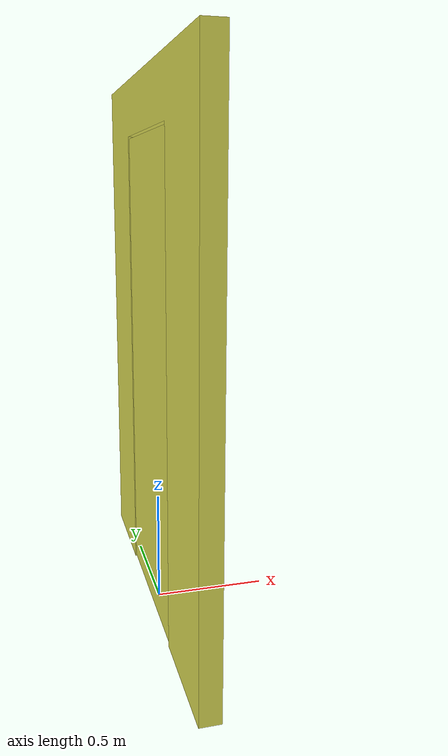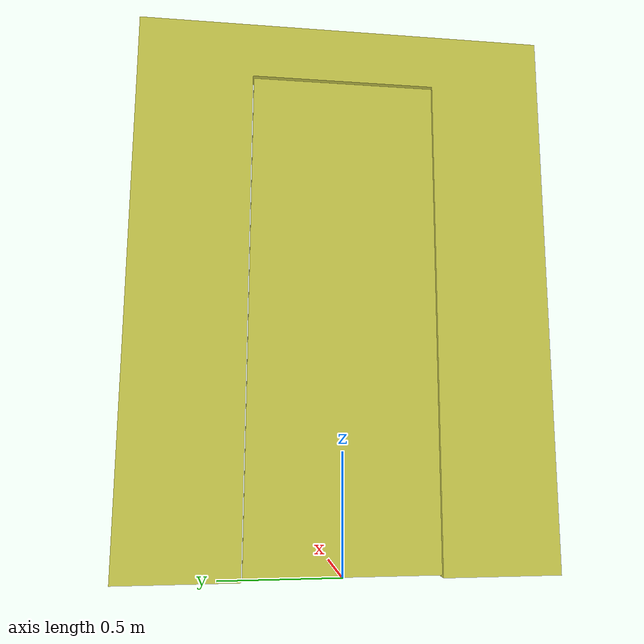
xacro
<?xml version="1.0" ?>
<robot xmlns:xacro="http://www.ros.org/wiki/xacro" name="door">

 <link name="world"/>
  <joint name="fixed" type="fixed">
    <parent link="world"/>
    <child link="baseLink"/>
    <origin rpy= "0 0 1.571" xyz="0 0 0"/>
  </joint>

<link name="baseLink">
    <inertial>
      <origin rpy="0 0 0" xyz="0 0 0"/>
      <mass value="1.0"/>
      <inertia ixx="0.048966669" ixy="0" ixz="0" iyy="0.046466667" iyz="0" izz="0.0041666669"/>
    </inertial>
    <visual>
      <origin rpy="0 0 0" xyz="0 0 0"/>
       <geometry>
         <mesh filename="package://reemc_door/models/meshes/frame2.stl"/>
       </geometry>
	   <material name="doormat0">
      <color rgba="0.8 0.8 0.3 1" />
      </material>

	  </visual>
     <collision>
       <origin rpy="0 0 0" xyz="0 0 0"/>
       <geometry>
         <mesh filename="package://reemc_door/models/meshes/frame2.stl"/>
       </geometry>
     </collision>

   </link>
   <link name="door">
    <inertial>
      <origin rpy="0 0 0" xyz="0 0 0"/>
      <mass value="1.0"/>
      <inertia ixx="0.048966669" ixy="0" ixz="0" iyy="0.046466667" iyz="0" izz="0.0041666669"/>
    </inertial>
    <visual>
      <origin rpy="0 0 0" xyz="0 0 0"/>
       <geometry>
         <mesh filename="package://reemc_door/models/meshes/door2.stl"/>
       </geometry>
	   <material name="doormat0">
      <color rgba="0.8 0.8 0.3 1" />
      </material>

	  </visual>
     <collision>
      <origin rpy="0 0 0" xyz="0 0 0"/>
       <geometry>
         <mesh filename="package://reemc_door/models/meshes/door2.stl"/>
       </geometry>
     </collision>

   </link>

   <joint name="joint_baseLink_door" type="continuous">
    <parent link="baseLink"/>
    <child link="door"/>
	<dynamics damping="1.0" friction="0.0001"/>
    <origin xyz="0.4155 0.0597 0"/>
		<axis xyz="0 0 1"/>

  </joint>

  <link name="lever">
    <inertial>
      <origin rpy="0 0 0" xyz="0 0 0"/>
      <mass value="1.0"/>
      <inertia ixx="0.048966669" ixy="0" ixz="0" iyy="0.046466667" iyz="0" izz="0.0041666669"/>
    </inertial>
    <visual>
      <origin rpy="0 0 0" xyz="0 0 0"/>
       <geometry>
         <mesh filename="package://reemc_door/models/meshes/lever2.stl"/>
       </geometry>
	   <material name="doormat0">
      <color rgba="0.8 0.8 0.3 1" />
      </material>

	  </visual>
     <collision>
       <origin rpy="0 0 0" xyz="0 0 0"/>
       <geometry>
         <mesh filename="package://reemc_door/models/meshes/lever2.stl"/>
       </geometry>
     </collision>

   </link>

   <joint name="joint_door_lever" type="continuous">
    <parent link="door"/>
    <child link="lever"/>
	<dynamics damping="1.0" friction="0.0001"/>
    <origin rpy="1.5708 0 0" xyz="-0.7455 -0.0705 1"/>
		<axis xyz="0 0 1"/>

  </joint>
</robot>
